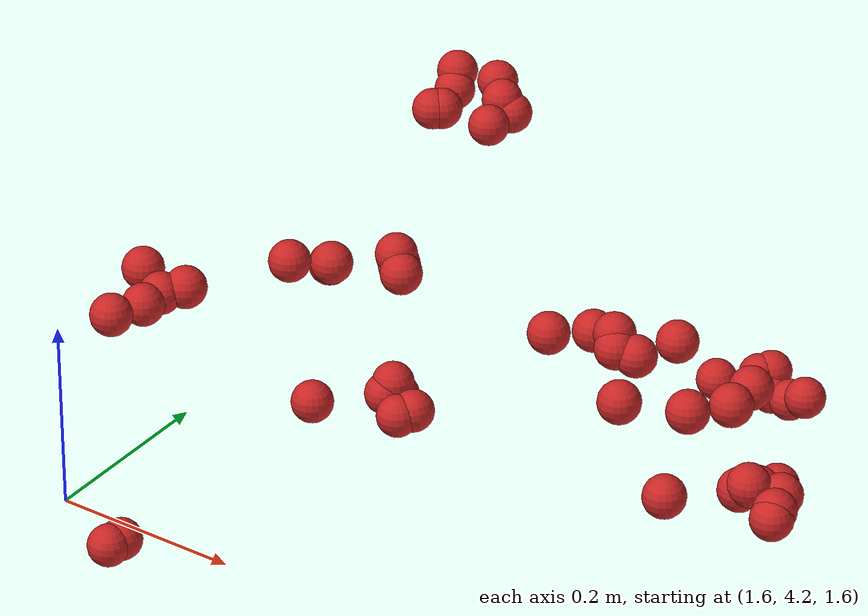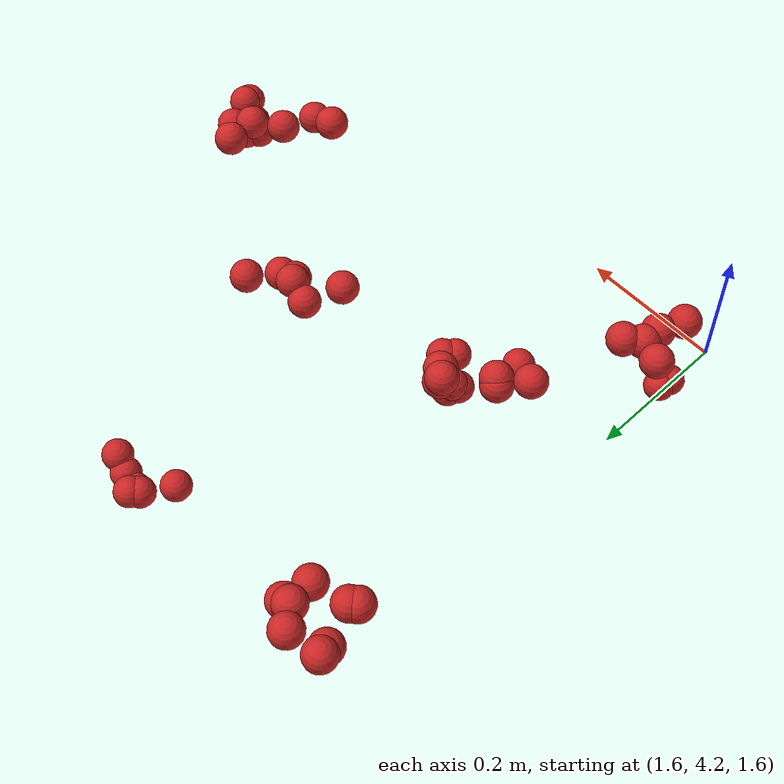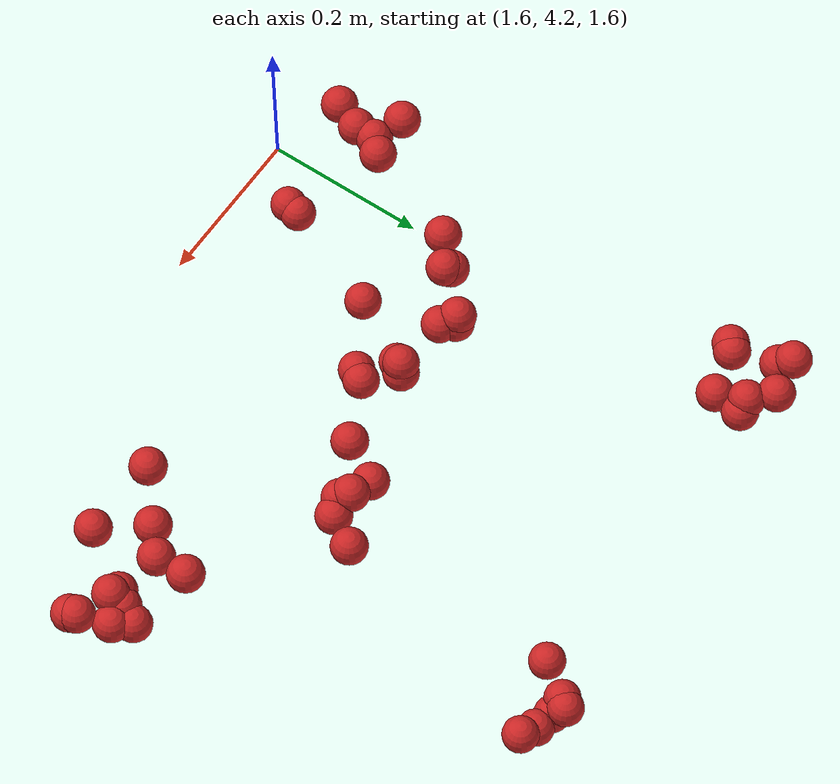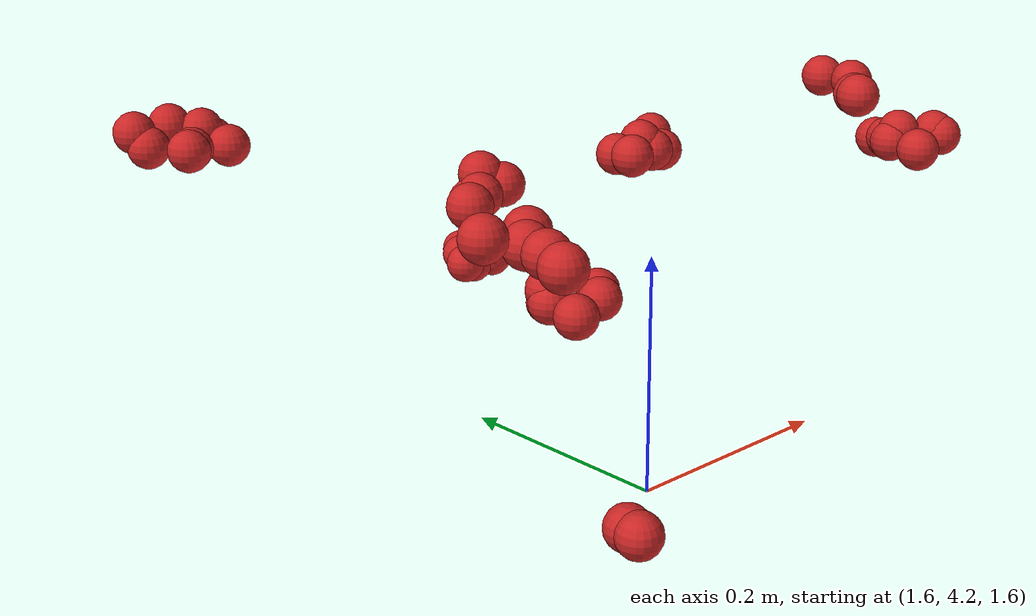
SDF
<sdf version="1.4">
 <model name="fruit_population">
  <static>true</static>
  <link name="fruit_26">
   <pose>2.122906141360459 4.403624283001968 1.7989802915674533 0 0 0</pose>
   <collision name="fruit_collision_26"><geometry><sphere><radius>0.022</radius></sphere></geometry></collision>
   <visual name="visual">
    <geometry><sphere><radius>0.022</radius></sphere></geometry>
    <material><script><name>Gazebo/Red</name></script></material>
   </visual>
   <inertial>
    <mass>0.05</mass>
    <inertia>
     <ixx>9.679999999999999e-06</ixx>
     <ixy>0.0</ixy>
     <ixz>0.0</ixz>
     <iyy>9.679999999999999e-06</iyy>
     <iyz>0.0</iyz>
     <izz>9.679999999999999e-06</izz>
    </inertia>
   </inertial>
   <sensor name="fruit_contact_26" type="contact">
    <plugin name="contact_plugin_26" filename="libcontact_plugin.so"/>
    <contact><collision>fruit_collision_26</collision><topic>fruit_contact_topic_26</topic></contact>
   </sensor>
  </link>
  <link name="fruit_84">
   <pose>1.9432268253336227 4.550039776176055 1.739779423558122 0 0 0</pose>
   <collision name="fruit_collision_84"><geometry><sphere><radius>0.022</radius></sphere></geometry></collision>
   <visual name="visual">
    <geometry><sphere><radius>0.022</radius></sphere></geometry>
    <material><script><name>Gazebo/Red</name></script></material>
   </visual>
   <inertial>
    <mass>0.05</mass>
    <inertia>
     <ixx>9.679999999999999e-06</ixx>
     <ixy>0.0</ixy>
     <ixz>0.0</ixz>
     <iyy>9.679999999999999e-06</iyy>
     <iyz>0.0</iyz>
     <izz>9.679999999999999e-06</izz>
    </inertia>
   </inertial>
   <sensor name="fruit_contact_84" type="contact">
    <plugin name="contact_plugin_84" filename="libcontact_plugin.so"/>
    <contact><collision>fruit_collision_84</collision><topic>fruit_contact_topic_84</topic></contact>
   </sensor>
  </link>
  <link name="fruit_87">
   <pose>1.9642028012419928 4.837444850843282 1.5453665002054073 0 0 0</pose>
   <collision name="fruit_collision_87"><geometry><sphere><radius>0.022</radius></sphere></geometry></collision>
   <visual name="visual">
    <geometry><sphere><radius>0.022</radius></sphere></geometry>
    <material><script><name>Gazebo/Red</name></script></material>
   </visual>
   <inertial>
    <mass>0.05</mass>
    <inertia>
     <ixx>9.679999999999999e-06</ixx>
     <ixy>0.0</ixy>
     <ixz>0.0</ixz>
     <iyy>9.679999999999999e-06</iyy>
     <iyz>0.0</iyz>
     <izz>9.679999999999999e-06</izz>
    </inertia>
   </inertial>
   <sensor name="fruit_contact_87" type="contact">
    <plugin name="contact_plugin_87" filename="libcontact_plugin.so"/>
    <contact><collision>fruit_collision_87</collision><topic>fruit_contact_topic_87</topic></contact>
   </sensor>
  </link>
  <link name="fruit_97">
   <pose>1.6679065337121517 4.488883455412499 1.75960047155998 0 0 0</pose>
   <collision name="fruit_collision_97"><geometry><sphere><radius>0.022</radius></sphere></geometry></collision>
   <visual name="visual">
    <geometry><sphere><radius>0.022</radius></sphere></geometry>
    <material><script><name>Gazebo/Red</name></script></material>
   </visual>
   <inertial>
    <mass>0.05</mass>
    <inertia>
     <ixx>9.679999999999999e-06</ixx>
     <ixy>0.0</ixy>
     <ixz>0.0</ixz>
     <iyy>9.679999999999999e-06</iyy>
     <iyz>0.0</iyz>
     <izz>9.679999999999999e-06</izz>
    </inertia>
   </inertial>
   <sensor name="fruit_contact_97" type="contact">
    <plugin name="contact_plugin_97" filename="libcontact_plugin.so"/>
    <contact><collision>fruit_collision_97</collision><topic>fruit_contact_topic_97</topic></contact>
   </sensor>
  </link>
  <link name="fruit_145">
   <pose>1.7409212848275704 4.425249019817472 1.650755678739573 0 0 0</pose>
   <collision name="fruit_collision_145"><geometry><sphere><radius>0.022</radius></sphere></geometry></collision>
   <visual name="visual">
    <geometry><sphere><radius>0.022</radius></sphere></geometry>
    <material><script><name>Gazebo/Red</name></script></material>
   </visual>
   <inertial>
    <mass>0.05</mass>
    <inertia>
     <ixx>9.679999999999999e-06</ixx>
     <ixy>0.0</ixy>
     <ixz>0.0</ixz>
     <iyy>9.679999999999999e-06</iyy>
     <iyz>0.0</iyz>
     <izz>9.679999999999999e-06</izz>
    </inertia>
   </inertial>
   <sensor name="fruit_contact_145" type="contact">
    <plugin name="contact_plugin_145" filename="libcontact_plugin.so"/>
    <contact><collision>fruit_collision_145</collision><topic>fruit_contact_topic_145</topic></contact>
   </sensor>
  </link>
  <link name="fruit_146">
   <pose>2.1941670821197645 4.375382671144024 1.7331034037670354 0 0 0</pose>
   <collision name="fruit_collision_146"><geometry><sphere><radius>0.022</radius></sphere></geometry></collision>
   <visual name="visual">
    <geometry><sphere><radius>0.022</radius></sphere></geometry>
    <material><script><name>Gazebo/Red</name></script></material>
   </visual>
   <inertial>
    <mass>0.05</mass>
    <inertia>
     <ixx>9.679999999999999e-06</ixx>
     <ixy>0.0</ixy>
     <ixz>0.0</ixz>
     <iyy>9.679999999999999e-06</iyy>
     <iyz>0.0</iyz>
     <izz>9.679999999999999e-06</izz>
    </inertia>
   </inertial>
   <sensor name="fruit_contact_146" type="contact">
    <plugin name="contact_plugin_146" filename="libcontact_plugin.so"/>
    <contact><collision>fruit_collision_146</collision><topic>fruit_contact_topic_146</topic></contact>
   </sensor>
  </link>
  <link name="fruit_177">
   <pose>2.0089975916077836 4.874539299256264 1.5252338698040244 0 0 0</pose>
   <collision name="fruit_collision_177"><geometry><sphere><radius>0.022</radius></sphere></geometry></collision>
   <visual name="visual">
    <geometry><sphere><radius>0.022</radius></sphere></geometry>
    <material><script><name>Gazebo/Red</name></script></material>
   </visual>
   <inertial>
    <mass>0.05</mass>
    <inertia>
     <ixx>9.679999999999999e-06</ixx>
     <ixy>0.0</ixy>
     <ixz>0.0</ixz>
     <iyy>9.679999999999999e-06</iyy>
     <iyz>0.0</iyz>
     <izz>9.679999999999999e-06</izz>
    </inertia>
   </inertial>
   <sensor name="fruit_contact_177" type="contact">
    <plugin name="contact_plugin_177" filename="libcontact_plugin.so"/>
    <contact><collision>fruit_collision_177</collision><topic>fruit_contact_topic_177</topic></contact>
   </sensor>
  </link>
  <link name="fruit_178">
   <pose>1.747388463699243 4.563607365197027 1.758313232135187 0 0 0</pose>
   <collision name="fruit_collision_178"><geometry><sphere><radius>0.022</radius></sphere></geometry></collision>
   <visual name="visual">
    <geometry><sphere><radius>0.022</radius></sphere></geometry>
    <material><script><name>Gazebo/Red</name></script></material>
   </visual>
   <inertial>
    <mass>0.05</mass>
    <inertia>
     <ixx>9.679999999999999e-06</ixx>
     <ixy>0.0</ixy>
     <ixz>0.0</ixz>
     <iyy>9.679999999999999e-06</iyy>
     <iyz>0.0</iyz>
     <izz>9.679999999999999e-06</izz>
    </inertia>
   </inertial>
   <sensor name="fruit_contact_178" type="contact">
    <plugin name="contact_plugin_178" filename="libcontact_plugin.so"/>
    <contact><collision>fruit_collision_178</collision><topic>fruit_contact_topic_178</topic></contact>
   </sensor>
  </link>
  <link name="fruit_179">
   <pose>1.580891974764362 4.911437718304843 1.7611936035224673 0 0 0</pose>
   <collision name="fruit_collision_179"><geometry><sphere><radius>0.022</radius></sphere></geometry></collision>
   <visual name="visual">
    <geometry><sphere><radius>0.022</radius></sphere></geometry>
    <material><script><name>Gazebo/Red</name></script></material>
   </visual>
   <inertial>
    <mass>0.05</mass>
    <inertia>
     <ixx>9.679999999999999e-06</ixx>
     <ixy>0.0</ixy>
     <ixz>0.0</ixz>
     <iyy>9.679999999999999e-06</iyy>
     <iyz>0.0</iyz>
     <izz>9.679999999999999e-06</izz>
    </inertia>
   </inertial>
   <sensor name="fruit_contact_179" type="contact">
    <plugin name="contact_plugin_179" filename="libcontact_plugin.so"/>
    <contact><collision>fruit_collision_179</collision><topic>fruit_contact_topic_179</topic></contact>
   </sensor>
  </link>
  <link name="fruit_190">
   <pose>1.7863328005804597 4.510809103716678 1.6310820038513532 0 0 0</pose>
   <collision name="fruit_collision_190"><geometry><sphere><radius>0.022</radius></sphere></geometry></collision>
   <visual name="visual">
    <geometry><sphere><radius>0.022</radius></sphere></geometry>
    <material><script><name>Gazebo/Red</name></script></material>
   </visual>
   <inertial>
    <mass>0.05</mass>
    <inertia>
     <ixx>9.679999999999999e-06</ixx>
     <ixy>0.0</ixy>
     <ixz>0.0</ixz>
     <iyy>9.679999999999999e-06</iyy>
     <iyz>0.0</iyz>
     <izz>9.679999999999999e-06</izz>
    </inertia>
   </inertial>
   <sensor name="fruit_contact_190" type="contact">
    <plugin name="contact_plugin_190" filename="libcontact_plugin.so"/>
    <contact><collision>fruit_collision_190</collision><topic>fruit_contact_topic_190</topic></contact>
   </sensor>
  </link>
  <link name="fruit_201">
   <pose>2.0039948772911664 4.579099876710897 1.7284798679810267 0 0 0</pose>
   <collision name="fruit_collision_201"><geometry><sphere><radius>0.022</radius></sphere></geometry></collision>
   <visual name="visual">
    <geometry><sphere><radius>0.022</radius></sphere></geometry>
    <material><script><name>Gazebo/Red</name></script></material>
   </visual>
   <inertial>
    <mass>0.05</mass>
    <inertia>
     <ixx>9.679999999999999e-06</ixx>
     <ixy>0.0</ixy>
     <ixz>0.0</ixz>
     <iyy>9.679999999999999e-06</iyy>
     <iyz>0.0</iyz>
     <izz>9.679999999999999e-06</izz>
    </inertia>
   </inertial>
   <sensor name="fruit_contact_201" type="contact">
    <plugin name="contact_plugin_201" filename="libcontact_plugin.so"/>
    <contact><collision>fruit_collision_201</collision><topic>fruit_contact_topic_201</topic></contact>
   </sensor>
  </link>
  <link name="fruit_202">
   <pose>2.237039828515706 4.4417274333289365 1.7210909599281032 0 0 0</pose>
   <collision name="fruit_collision_202"><geometry><sphere><radius>0.022</radius></sphere></geometry></collision>
   <visual name="visual">
    <geometry><sphere><radius>0.022</radius></sphere></geometry>
    <material><script><name>Gazebo/Red</name></script></material>
   </visual>
   <inertial>
    <mass>0.05</mass>
    <inertia>
     <ixx>9.679999999999999e-06</ixx>
     <ixy>0.0</ixy>
     <ixz>0.0</ixz>
     <iyy>9.679999999999999e-06</iyy>
     <iyz>0.0</iyz>
     <izz>9.679999999999999e-06</izz>
    </inertia>
   </inertial>
   <sensor name="fruit_contact_202" type="contact">
    <plugin name="contact_plugin_202" filename="libcontact_plugin.so"/>
    <contact><collision>fruit_collision_202</collision><topic>fruit_contact_topic_202</topic></contact>
   </sensor>
  </link>
  <link name="fruit_208">
   <pose>2.2580498129046953 4.477205055046903 1.7146320880662616 0 0 0</pose>
   <collision name="fruit_collision_208"><geometry><sphere><radius>0.022</radius></sphere></geometry></collision>
   <visual name="visual">
    <geometry><sphere><radius>0.022</radius></sphere></geometry>
    <material><script><name>Gazebo/Red</name></script></material>
   </visual>
   <inertial>
    <mass>0.05</mass>
    <inertia>
     <ixx>9.679999999999999e-06</ixx>
     <ixy>0.0</ixy>
     <ixz>0.0</ixz>
     <iyy>9.679999999999999e-06</iyy>
     <iyz>0.0</iyz>
     <izz>9.679999999999999e-06</izz>
    </inertia>
   </inertial>
   <sensor name="fruit_contact_208" type="contact">
    <plugin name="contact_plugin_208" filename="libcontact_plugin.so"/>
    <contact><collision>fruit_collision_208</collision><topic>fruit_contact_topic_208</topic></contact>
   </sensor>
  </link>
  <link name="fruit_217">
   <pose>2.0573567343596935 4.863595115505771 1.5419962754285272 0 0 0</pose>
   <collision name="fruit_collision_217"><geometry><sphere><radius>0.022</radius></sphere></geometry></collision>
   <visual name="visual">
    <geometry><sphere><radius>0.022</radius></sphere></geometry>
    <material><script><name>Gazebo/Red</name></script></material>
   </visual>
   <inertial>
    <mass>0.05</mass>
    <inertia>
     <ixx>9.679999999999999e-06</ixx>
     <ixy>0.0</ixy>
     <ixz>0.0</ixz>
     <iyy>9.679999999999999e-06</iyy>
     <iyz>0.0</iyz>
     <izz>9.679999999999999e-06</izz>
    </inertia>
   </inertial>
   <sensor name="fruit_contact_217" type="contact">
    <plugin name="contact_plugin_217" filename="libcontact_plugin.so"/>
    <contact><collision>fruit_collision_217</collision><topic>fruit_contact_topic_217</topic></contact>
   </sensor>
  </link>
  <link name="fruit_218">
   <pose>1.9919711301068115 4.877065616668067 1.5411069700291826 0 0 0</pose>
   <collision name="fruit_collision_218"><geometry><sphere><radius>0.022</radius></sphere></geometry></collision>
   <visual name="visual">
    <geometry><sphere><radius>0.022</radius></sphere></geometry>
    <material><script><name>Gazebo/Red</name></script></material>
   </visual>
   <inertial>
    <mass>0.05</mass>
    <inertia>
     <ixx>9.679999999999999e-06</ixx>
     <ixy>0.0</ixy>
     <ixz>0.0</ixz>
     <iyy>9.679999999999999e-06</iyy>
     <iyz>0.0</iyz>
     <izz>9.679999999999999e-06</izz>
    </inertia>
   </inertial>
   <sensor name="fruit_contact_218" type="contact">
    <plugin name="contact_plugin_218" filename="libcontact_plugin.so"/>
    <contact><collision>fruit_collision_218</collision><topic>fruit_contact_topic_218</topic></contact>
   </sensor>
  </link>
  <link name="fruit_259">
   <pose>2.034912610570725 4.869585926316124 1.5283254979944128 0 0 0</pose>
   <collision name="fruit_collision_259"><geometry><sphere><radius>0.022</radius></sphere></geometry></collision>
   <visual name="visual">
    <geometry><sphere><radius>0.022</radius></sphere></geometry>
    <material><script><name>Gazebo/Red</name></script></material>
   </visual>
   <inertial>
    <mass>0.05</mass>
    <inertia>
     <ixx>9.679999999999999e-06</ixx>
     <ixy>0.0</ixy>
     <ixz>0.0</ixz>
     <iyy>9.679999999999999e-06</iyy>
     <iyz>0.0</iyz>
     <izz>9.679999999999999e-06</izz>
    </inertia>
   </inertial>
   <sensor name="fruit_contact_259" type="contact">
    <plugin name="contact_plugin_259" filename="libcontact_plugin.so"/>
    <contact><collision>fruit_collision_259</collision><topic>fruit_contact_topic_259</topic></contact>
   </sensor>
  </link>
  <link name="fruit_278">
   <pose>1.5989522129271279 4.8391779300215 1.7529785555364317 0 0 0</pose>
   <collision name="fruit_collision_278"><geometry><sphere><radius>0.022</radius></sphere></geometry></collision>
   <visual name="visual">
    <geometry><sphere><radius>0.022</radius></sphere></geometry>
    <material><script><name>Gazebo/Red</name></script></material>
   </visual>
   <inertial>
    <mass>0.05</mass>
    <inertia>
     <ixx>9.679999999999999e-06</ixx>
     <ixy>0.0</ixy>
     <ixz>0.0</ixz>
     <iyy>9.679999999999999e-06</iyy>
     <iyz>0.0</iyz>
     <izz>9.679999999999999e-06</izz>
    </inertia>
   </inertial>
   <sensor name="fruit_contact_278" type="contact">
    <plugin name="contact_plugin_278" filename="libcontact_plugin.so"/>
    <contact><collision>fruit_collision_278</collision><topic>fruit_contact_topic_278</topic></contact>
   </sensor>
  </link>
  <link name="fruit_288">
   <pose>1.663578911206776 4.893761831457992 1.7437980547366316 0 0 0</pose>
   <collision name="fruit_collision_288"><geometry><sphere><radius>0.022</radius></sphere></geometry></collision>
   <visual name="visual">
    <geometry><sphere><radius>0.022</radius></sphere></geometry>
    <material><script><name>Gazebo/Red</name></script></material>
   </visual>
   <inertial>
    <mass>0.05</mass>
    <inertia>
     <ixx>9.679999999999999e-06</ixx>
     <ixy>0.0</ixy>
     <ixz>0.0</ixz>
     <iyy>9.679999999999999e-06</iyy>
     <iyz>0.0</iyz>
     <izz>9.679999999999999e-06</izz>
    </inertia>
   </inertial>
   <sensor name="fruit_contact_288" type="contact">
    <plugin name="contact_plugin_288" filename="libcontact_plugin.so"/>
    <contact><collision>fruit_collision_288</collision><topic>fruit_contact_topic_288</topic></contact>
   </sensor>
  </link>
  <link name="fruit_344">
   <pose>1.7782299415832223 4.499908255282195 1.6351574936127513 0 0 0</pose>
   <collision name="fruit_collision_344"><geometry><sphere><radius>0.022</radius></sphere></geometry></collision>
   <visual name="visual">
    <geometry><sphere><radius>0.022</radius></sphere></geometry>
    <material><script><name>Gazebo/Red</name></script></material>
   </visual>
   <inertial>
    <mass>0.05</mass>
    <inertia>
     <ixx>9.679999999999999e-06</ixx>
     <ixy>0.0</ixy>
     <ixz>0.0</ixz>
     <iyy>9.679999999999999e-06</iyy>
     <iyz>0.0</iyz>
     <izz>9.679999999999999e-06</izz>
    </inertia>
   </inertial>
   <sensor name="fruit_contact_344" type="contact">
    <plugin name="contact_plugin_344" filename="libcontact_plugin.so"/>
    <contact><collision>fruit_collision_344</collision><topic>fruit_contact_topic_344</topic></contact>
   </sensor>
  </link>
  <link name="fruit_346">
   <pose>1.6279974952752319 4.919103139105554 1.7599964726360533 0 0 0</pose>
   <collision name="fruit_collision_346"><geometry><sphere><radius>0.022</radius></sphere></geometry></collision>
   <visual name="visual">
    <geometry><sphere><radius>0.022</radius></sphere></geometry>
    <material><script><name>Gazebo/Red</name></script></material>
   </visual>
   <inertial>
    <mass>0.05</mass>
    <inertia>
     <ixx>9.679999999999999e-06</ixx>
     <ixy>0.0</ixy>
     <ixz>0.0</ixz>
     <iyy>9.679999999999999e-06</iyy>
     <iyz>0.0</iyz>
     <izz>9.679999999999999e-06</izz>
    </inertia>
   </inertial>
   <sensor name="fruit_contact_346" type="contact">
    <plugin name="contact_plugin_346" filename="libcontact_plugin.so"/>
    <contact><collision>fruit_collision_346</collision><topic>fruit_contact_topic_346</topic></contact>
   </sensor>
  </link>
  <link name="fruit_372">
   <pose>1.825594516926214 4.481521374306367 1.6410518697542782 0 0 0</pose>
   <collision name="fruit_collision_372"><geometry><sphere><radius>0.022</radius></sphere></geometry></collision>
   <visual name="visual">
    <geometry><sphere><radius>0.022</radius></sphere></geometry>
    <material><script><name>Gazebo/Red</name></script></material>
   </visual>
   <inertial>
    <mass>0.05</mass>
    <inertia>
     <ixx>9.679999999999999e-06</ixx>
     <ixy>0.0</ixy>
     <ixz>0.0</ixz>
     <iyy>9.679999999999999e-06</iyy>
     <iyz>0.0</iyz>
     <izz>9.679999999999999e-06</izz>
    </inertia>
   </inertial>
   <sensor name="fruit_contact_372" type="contact">
    <plugin name="contact_plugin_372" filename="libcontact_plugin.so"/>
    <contact><collision>fruit_collision_372</collision><topic>fruit_contact_topic_372</topic></contact>
   </sensor>
  </link>
  <link name="fruit_389">
   <pose>2.2051668117556646 4.474642444496734 1.7884428027838484 0 0 0</pose>
   <collision name="fruit_collision_389"><geometry><sphere><radius>0.022</radius></sphere></geometry></collision>
   <visual name="visual">
    <geometry><sphere><radius>0.022</radius></sphere></geometry>
    <material><script><name>Gazebo/Red</name></script></material>
   </visual>
   <inertial>
    <mass>0.05</mass>
    <inertia>
     <ixx>9.679999999999999e-06</ixx>
     <ixy>0.0</ixy>
     <ixz>0.0</ixz>
     <iyy>9.679999999999999e-06</iyy>
     <iyz>0.0</iyz>
     <izz>9.679999999999999e-06</izz>
    </inertia>
   </inertial>
   <sensor name="fruit_contact_389" type="contact">
    <plugin name="contact_plugin_389" filename="libcontact_plugin.so"/>
    <contact><collision>fruit_collision_389</collision><topic>fruit_contact_topic_389</topic></contact>
   </sensor>
  </link>
  <link name="fruit_402">
   <pose>2.203405040533161 4.5133800203852 1.7873308844937685 0 0 0</pose>
   <collision name="fruit_collision_402"><geometry><sphere><radius>0.022</radius></sphere></geometry></collision>
   <visual name="visual">
    <geometry><sphere><radius>0.022</radius></sphere></geometry>
    <material><script><name>Gazebo/Red</name></script></material>
   </visual>
   <inertial>
    <mass>0.05</mass>
    <inertia>
     <ixx>9.679999999999999e-06</ixx>
     <ixy>0.0</ixy>
     <ixz>0.0</ixz>
     <iyy>9.679999999999999e-06</iyy>
     <iyz>0.0</iyz>
     <izz>9.679999999999999e-06</izz>
    </inertia>
   </inertial>
   <sensor name="fruit_contact_402" type="contact">
    <plugin name="contact_plugin_402" filename="libcontact_plugin.so"/>
    <contact><collision>fruit_collision_402</collision><topic>fruit_contact_topic_402</topic></contact>
   </sensor>
  </link>
  <link name="fruit_411">
   <pose>2.2484417443966107 4.440084083026912 1.7315927614401958 0 0 0</pose>
   <collision name="fruit_collision_411"><geometry><sphere><radius>0.022</radius></sphere></geometry></collision>
   <visual name="visual">
    <geometry><sphere><radius>0.022</radius></sphere></geometry>
    <material><script><name>Gazebo/Red</name></script></material>
   </visual>
   <inertial>
    <mass>0.05</mass>
    <inertia>
     <ixx>9.679999999999999e-06</ixx>
     <ixy>0.0</ixy>
     <ixz>0.0</ixz>
     <iyy>9.679999999999999e-06</iyy>
     <iyz>0.0</iyz>
     <izz>9.679999999999999e-06</izz>
    </inertia>
   </inertial>
   <sensor name="fruit_contact_411" type="contact">
    <plugin name="contact_plugin_411" filename="libcontact_plugin.so"/>
    <contact><collision>fruit_collision_411</collision><topic>fruit_contact_topic_411</topic></contact>
   </sensor>
  </link>
  <link name="fruit_428">
   <pose>1.9964005402067695 4.588962459949756 1.7382639446037678 0 0 0</pose>
   <collision name="fruit_collision_428"><geometry><sphere><radius>0.022</radius></sphere></geometry></collision>
   <visual name="visual">
    <geometry><sphere><radius>0.022</radius></sphere></geometry>
    <material><script><name>Gazebo/Red</name></script></material>
   </visual>
   <inertial>
    <mass>0.05</mass>
    <inertia>
     <ixx>9.679999999999999e-06</ixx>
     <ixy>0.0</ixy>
     <ixz>0.0</ixz>
     <iyy>9.679999999999999e-06</iyy>
     <iyz>0.0</iyz>
     <izz>9.679999999999999e-06</izz>
    </inertia>
   </inertial>
   <sensor name="fruit_contact_428" type="contact">
    <plugin name="contact_plugin_428" filename="libcontact_plugin.so"/>
    <contact><collision>fruit_collision_428</collision><topic>fruit_contact_topic_428</topic></contact>
   </sensor>
  </link>
  <link name="fruit_459">
   <pose>2.001114839554528 4.887444638149814 1.5430146793199688 0 0 0</pose>
   <collision name="fruit_collision_459"><geometry><sphere><radius>0.022</radius></sphere></geometry></collision>
   <visual name="visual">
    <geometry><sphere><radius>0.022</radius></sphere></geometry>
    <material><script><name>Gazebo/Red</name></script></material>
   </visual>
   <inertial>
    <mass>0.05</mass>
    <inertia>
     <ixx>9.679999999999999e-06</ixx>
     <ixy>0.0</ixy>
     <ixz>0.0</ixz>
     <iyy>9.679999999999999e-06</iyy>
     <iyz>0.0</iyz>
     <izz>9.679999999999999e-06</izz>
    </inertia>
   </inertial>
   <sensor name="fruit_contact_459" type="contact">
    <plugin name="contact_plugin_459" filename="libcontact_plugin.so"/>
    <contact><collision>fruit_collision_459</collision><topic>fruit_contact_topic_459</topic></contact>
   </sensor>
  </link>
  <link name="fruit_466">
   <pose>2.173714659964653 4.446639844679779 1.784142386352124 0 0 0</pose>
   <collision name="fruit_collision_466"><geometry><sphere><radius>0.022</radius></sphere></geometry></collision>
   <visual name="visual">
    <geometry><sphere><radius>0.022</radius></sphere></geometry>
    <material><script><name>Gazebo/Red</name></script></material>
   </visual>
   <inertial>
    <mass>0.05</mass>
    <inertia>
     <ixx>9.679999999999999e-06</ixx>
     <ixy>0.0</ixy>
     <ixz>0.0</ixz>
     <iyy>9.679999999999999e-06</iyy>
     <iyz>0.0</iyz>
     <izz>9.679999999999999e-06</izz>
    </inertia>
   </inertial>
   <sensor name="fruit_contact_466" type="contact">
    <plugin name="contact_plugin_466" filename="libcontact_plugin.so"/>
    <contact><collision>fruit_collision_466</collision><topic>fruit_contact_topic_466</topic></contact>
   </sensor>
  </link>
  <link name="fruit_472">
   <pose>1.6273131287147509 4.369249531936634 1.7739067260691397 0 0 0</pose>
   <collision name="fruit_collision_472"><geometry><sphere><radius>0.022</radius></sphere></geometry></collision>
   <visual name="visual">
    <geometry><sphere><radius>0.022</radius></sphere></geometry>
    <material><script><name>Gazebo/Red</name></script></material>
   </visual>
   <inertial>
    <mass>0.05</mass>
    <inertia>
     <ixx>9.679999999999999e-06</ixx>
     <ixy>0.0</ixy>
     <ixz>0.0</ixz>
     <iyy>9.679999999999999e-06</iyy>
     <iyz>0.0</iyz>
     <izz>9.679999999999999e-06</izz>
    </inertia>
   </inertial>
   <sensor name="fruit_contact_472" type="contact">
    <plugin name="contact_plugin_472" filename="libcontact_plugin.so"/>
    <contact><collision>fruit_collision_472</collision><topic>fruit_contact_topic_472</topic></contact>
   </sensor>
  </link>
  <link name="fruit_473">
   <pose>1.6064706671966522 4.845601289070884 1.7528488727902305 0 0 0</pose>
   <collision name="fruit_collision_473"><geometry><sphere><radius>0.022</radius></sphere></geometry></collision>
   <visual name="visual">
    <geometry><sphere><radius>0.022</radius></sphere></geometry>
    <material><script><name>Gazebo/Red</name></script></material>
   </visual>
   <inertial>
    <mass>0.05</mass>
    <inertia>
     <ixx>9.679999999999999e-06</ixx>
     <ixy>0.0</ixy>
     <ixz>0.0</ixz>
     <iyy>9.679999999999999e-06</iyy>
     <iyz>0.0</iyz>
     <izz>9.679999999999999e-06</izz>
    </inertia>
   </inertial>
   <sensor name="fruit_contact_473" type="contact">
    <plugin name="contact_plugin_473" filename="libcontact_plugin.so"/>
    <contact><collision>fruit_collision_473</collision><topic>fruit_contact_topic_473</topic></contact>
   </sensor>
  </link>
  <link name="fruit_514">
   <pose>1.6077338311430576 4.325019519342266 1.7687749767778547 0 0 0</pose>
   <collision name="fruit_collision_514"><geometry><sphere><radius>0.022</radius></sphere></geometry></collision>
   <visual name="visual">
    <geometry><sphere><radius>0.022</radius></sphere></geometry>
    <material><script><name>Gazebo/Red</name></script></material>
   </visual>
   <inertial>
    <mass>0.05</mass>
    <inertia>
     <ixx>9.679999999999999e-06</ixx>
     <ixy>0.0</ixy>
     <ixz>0.0</ixz>
     <iyy>9.679999999999999e-06</iyy>
     <iyz>0.0</iyz>
     <izz>9.679999999999999e-06</izz>
    </inertia>
   </inertial>
   <sensor name="fruit_contact_514" type="contact">
    <plugin name="contact_plugin_514" filename="libcontact_plugin.so"/>
    <contact><collision>fruit_collision_514</collision><topic>fruit_contact_topic_514</topic></contact>
   </sensor>
  </link>
  <link name="fruit_517">
   <pose>2.049085292980454 4.62338192817068 1.7297826399809408 0 0 0</pose>
   <collision name="fruit_collision_517"><geometry><sphere><radius>0.022</radius></sphere></geometry></collision>
   <visual name="visual">
    <geometry><sphere><radius>0.022</radius></sphere></geometry>
    <material><script><name>Gazebo/Red</name></script></material>
   </visual>
   <inertial>
    <mass>0.05</mass>
    <inertia>
     <ixx>9.679999999999999e-06</ixx>
     <ixy>0.0</ixy>
     <ixz>0.0</ixz>
     <iyy>9.679999999999999e-06</iyy>
     <iyz>0.0</iyz>
     <izz>9.679999999999999e-06</izz>
    </inertia>
   </inertial>
   <sensor name="fruit_contact_517" type="contact">
    <plugin name="contact_plugin_517" filename="libcontact_plugin.so"/>
    <contact><collision>fruit_collision_517</collision><topic>fruit_contact_topic_517</topic></contact>
   </sensor>
  </link>
  <link name="fruit_541">
   <pose>1.7821043976347504 4.5078674870222395 1.645454864566984 0 0 0</pose>
   <collision name="fruit_collision_541"><geometry><sphere><radius>0.022</radius></sphere></geometry></collision>
   <visual name="visual">
    <geometry><sphere><radius>0.022</radius></sphere></geometry>
    <material><script><name>Gazebo/Red</name></script></material>
   </visual>
   <inertial>
    <mass>0.05</mass>
    <inertia>
     <ixx>9.679999999999999e-06</ixx>
     <ixy>0.0</ixy>
     <ixz>0.0</ixz>
     <iyy>9.679999999999999e-06</iyy>
     <iyz>0.0</iyz>
     <izz>9.679999999999999e-06</izz>
    </inertia>
   </inertial>
   <sensor name="fruit_contact_541" type="contact">
    <plugin name="contact_plugin_541" filename="libcontact_plugin.so"/>
    <contact><collision>fruit_collision_541</collision><topic>fruit_contact_topic_541</topic></contact>
   </sensor>
  </link>
  <link name="fruit_549">
   <pose>2.024738201581921 4.5850385803903215 1.7235517679183547 0 0 0</pose>
   <collision name="fruit_collision_549"><geometry><sphere><radius>0.022</radius></sphere></geometry></collision>
   <visual name="visual">
    <geometry><sphere><radius>0.022</radius></sphere></geometry>
    <material><script><name>Gazebo/Red</name></script></material>
   </visual>
   <inertial>
    <mass>0.05</mass>
    <inertia>
     <ixx>9.679999999999999e-06</ixx>
     <ixy>0.0</ixy>
     <ixz>0.0</ixz>
     <iyy>9.679999999999999e-06</iyy>
     <iyz>0.0</iyz>
     <izz>9.679999999999999e-06</izz>
    </inertia>
   </inertial>
   <sensor name="fruit_contact_549" type="contact">
    <plugin name="contact_plugin_549" filename="libcontact_plugin.so"/>
    <contact><collision>fruit_collision_549</collision><topic>fruit_contact_topic_549</topic></contact>
   </sensor>
  </link>
  <link name="fruit_550">
   <pose>1.6296770332227977 4.2493406928177055 1.5383220158185216 0 0 0</pose>
   <collision name="fruit_collision_550"><geometry><sphere><radius>0.022</radius></sphere></geometry></collision>
   <visual name="visual">
    <geometry><sphere><radius>0.022</radius></sphere></geometry>
    <material><script><name>Gazebo/Red</name></script></material>
   </visual>
   <inertial>
    <mass>0.05</mass>
    <inertia>
     <ixx>9.679999999999999e-06</ixx>
     <ixy>0.0</ixy>
     <ixz>0.0</ixz>
     <iyy>9.679999999999999e-06</iyy>
     <iyz>0.0</iyz>
     <izz>9.679999999999999e-06</izz>
    </inertia>
   </inertial>
   <sensor name="fruit_contact_550" type="contact">
    <plugin name="contact_plugin_550" filename="libcontact_plugin.so"/>
    <contact><collision>fruit_collision_550</collision><topic>fruit_contact_topic_550</topic></contact>
   </sensor>
  </link>
  <link name="fruit_579">
   <pose>1.6094191429138724 4.351343434639087 1.7697996346747893 0 0 0</pose>
   <collision name="fruit_collision_579"><geometry><sphere><radius>0.022</radius></sphere></geometry></collision>
   <visual name="visual">
    <geometry><sphere><radius>0.022</radius></sphere></geometry>
    <material><script><name>Gazebo/Red</name></script></material>
   </visual>
   <inertial>
    <mass>0.05</mass>
    <inertia>
     <ixx>9.679999999999999e-06</ixx>
     <ixy>0.0</ixy>
     <ixz>0.0</ixz>
     <iyy>9.679999999999999e-06</iyy>
     <iyz>0.0</iyz>
     <izz>9.679999999999999e-06</izz>
    </inertia>
   </inertial>
   <sensor name="fruit_contact_579" type="contact">
    <plugin name="contact_plugin_579" filename="libcontact_plugin.so"/>
    <contact><collision>fruit_collision_579</collision><topic>fruit_contact_topic_579</topic></contact>
   </sensor>
  </link>
  <link name="fruit_602">
   <pose>1.6510564592440056 4.893994421493594 1.7559877655938017 0 0 0</pose>
   <collision name="fruit_collision_602"><geometry><sphere><radius>0.022</radius></sphere></geometry></collision>
   <visual name="visual">
    <geometry><sphere><radius>0.022</radius></sphere></geometry>
    <material><script><name>Gazebo/Red</name></script></material>
   </visual>
   <inertial>
    <mass>0.05</mass>
    <inertia>
     <ixx>9.679999999999999e-06</ixx>
     <ixy>0.0</ixy>
     <ixz>0.0</ixz>
     <iyy>9.679999999999999e-06</iyy>
     <iyz>0.0</iyz>
     <izz>9.679999999999999e-06</izz>
    </inertia>
   </inertial>
   <sensor name="fruit_contact_602" type="contact">
    <plugin name="contact_plugin_602" filename="libcontact_plugin.so"/>
    <contact><collision>fruit_collision_602</collision><topic>fruit_contact_topic_602</topic></contact>
   </sensor>
  </link>
  <link name="fruit_608">
   <pose>1.6963335344531587 4.518988883115587 1.7510370852006836 0 0 0</pose>
   <collision name="fruit_collision_608"><geometry><sphere><radius>0.022</radius></sphere></geometry></collision>
   <visual name="visual">
    <geometry><sphere><radius>0.022</radius></sphere></geometry>
    <material><script><name>Gazebo/Red</name></script></material>
   </visual>
   <inertial>
    <mass>0.05</mass>
    <inertia>
     <ixx>9.679999999999999e-06</ixx>
     <ixy>0.0</ixy>
     <ixz>0.0</ixz>
     <iyy>9.679999999999999e-06</iyy>
     <iyz>0.0</iyz>
     <izz>9.679999999999999e-06</izz>
    </inertia>
   </inertial>
   <sensor name="fruit_contact_608" type="contact">
    <plugin name="contact_plugin_608" filename="libcontact_plugin.so"/>
    <contact><collision>fruit_collision_608</collision><topic>fruit_contact_topic_608</topic></contact>
   </sensor>
  </link>
  <link name="fruit_609">
   <pose>1.7510113417336548 4.563460930997661 1.7467959680735043 0 0 0</pose>
   <collision name="fruit_collision_609"><geometry><sphere><radius>0.022</radius></sphere></geometry></collision>
   <visual name="visual">
    <geometry><sphere><radius>0.022</radius></sphere></geometry>
    <material><script><name>Gazebo/Red</name></script></material>
   </visual>
   <inertial>
    <mass>0.05</mass>
    <inertia>
     <ixx>9.679999999999999e-06</ixx>
     <ixy>0.0</ixy>
     <ixz>0.0</ixz>
     <iyy>9.679999999999999e-06</iyy>
     <iyz>0.0</iyz>
     <izz>9.679999999999999e-06</izz>
    </inertia>
   </inertial>
   <sensor name="fruit_contact_609" type="contact">
    <plugin name="contact_plugin_609" filename="libcontact_plugin.so"/>
    <contact><collision>fruit_collision_609</collision><topic>fruit_contact_topic_609</topic></contact>
   </sensor>
  </link>
  <link name="fruit_612">
   <pose>1.587505530378745 4.896654549076057 1.7470964898027854 0 0 0</pose>
   <collision name="fruit_collision_612"><geometry><sphere><radius>0.022</radius></sphere></geometry></collision>
   <visual name="visual">
    <geometry><sphere><radius>0.022</radius></sphere></geometry>
    <material><script><name>Gazebo/Red</name></script></material>
   </visual>
   <inertial>
    <mass>0.05</mass>
    <inertia>
     <ixx>9.679999999999999e-06</ixx>
     <ixy>0.0</ixy>
     <ixz>0.0</ixz>
     <iyy>9.679999999999999e-06</iyy>
     <iyz>0.0</iyz>
     <izz>9.679999999999999e-06</izz>
    </inertia>
   </inertial>
   <sensor name="fruit_contact_612" type="contact">
    <plugin name="contact_plugin_612" filename="libcontact_plugin.so"/>
    <contact><collision>fruit_collision_612</collision><topic>fruit_contact_topic_612</topic></contact>
   </sensor>
  </link>
  <link name="fruit_627">
   <pose>1.7631602281970442 4.549663234364399 1.7473981398763805 0 0 0</pose>
   <collision name="fruit_collision_627"><geometry><sphere><radius>0.022</radius></sphere></geometry></collision>
   <visual name="visual">
    <geometry><sphere><radius>0.022</radius></sphere></geometry>
    <material><script><name>Gazebo/Red</name></script></material>
   </visual>
   <inertial>
    <mass>0.05</mass>
    <inertia>
     <ixx>9.679999999999999e-06</ixx>
     <ixy>0.0</ixy>
     <ixz>0.0</ixz>
     <iyy>9.679999999999999e-06</iyy>
     <iyz>0.0</iyz>
     <izz>9.679999999999999e-06</izz>
    </inertia>
   </inertial>
   <sensor name="fruit_contact_627" type="contact">
    <plugin name="contact_plugin_627" filename="libcontact_plugin.so"/>
    <contact><collision>fruit_collision_627</collision><topic>fruit_contact_topic_627</topic></contact>
   </sensor>
  </link>
  <link name="fruit_632">
   <pose>1.6262421614200009 4.2326112279226225 1.5384877043502605 0 0 0</pose>
   <collision name="fruit_collision_632"><geometry><sphere><radius>0.022</radius></sphere></geometry></collision>
   <visual name="visual">
    <geometry><sphere><radius>0.022</radius></sphere></geometry>
    <material><script><name>Gazebo/Red</name></script></material>
   </visual>
   <inertial>
    <mass>0.05</mass>
    <inertia>
     <ixx>9.679999999999999e-06</ixx>
     <ixy>0.0</ixy>
     <ixz>0.0</ixz>
     <iyy>9.679999999999999e-06</iyy>
     <iyz>0.0</iyz>
     <izz>9.679999999999999e-06</izz>
    </inertia>
   </inertial>
   <sensor name="fruit_contact_632" type="contact">
    <plugin name="contact_plugin_632" filename="libcontact_plugin.so"/>
    <contact><collision>fruit_collision_632</collision><topic>fruit_contact_topic_632</topic></contact>
   </sensor>
  </link>
  <link name="fruit_664">
   <pose>2.2909469019698028 4.414180562481794 1.7231038652919468 0 0 0</pose>
   <collision name="fruit_collision_664"><geometry><sphere><radius>0.022</radius></sphere></geometry></collision>
   <visual name="visual">
    <geometry><sphere><radius>0.022</radius></sphere></geometry>
    <material><script><name>Gazebo/Red</name></script></material>
   </visual>
   <inertial>
    <mass>0.05</mass>
    <inertia>
     <ixx>9.679999999999999e-06</ixx>
     <ixy>0.0</ixy>
     <ixz>0.0</ixz>
     <iyy>9.679999999999999e-06</iyy>
     <iyz>0.0</iyz>
     <izz>9.679999999999999e-06</izz>
    </inertia>
   </inertial>
   <sensor name="fruit_contact_664" type="contact">
    <plugin name="contact_plugin_664" filename="libcontact_plugin.so"/>
    <contact><collision>fruit_collision_664</collision><topic>fruit_contact_topic_664</topic></contact>
   </sensor>
  </link>
  <link name="fruit_667">
   <pose>1.6590976524596388 4.857010681365526 1.7439962985596298 0 0 0</pose>
   <collision name="fruit_collision_667"><geometry><sphere><radius>0.022</radius></sphere></geometry></collision>
   <visual name="visual">
    <geometry><sphere><radius>0.022</radius></sphere></geometry>
    <material><script><name>Gazebo/Red</name></script></material>
   </visual>
   <inertial>
    <mass>0.05</mass>
    <inertia>
     <ixx>9.679999999999999e-06</ixx>
     <ixy>0.0</ixy>
     <ixz>0.0</ixz>
     <iyy>9.679999999999999e-06</iyy>
     <iyz>0.0</iyz>
     <izz>9.679999999999999e-06</izz>
    </inertia>
   </inertial>
   <sensor name="fruit_contact_667" type="contact">
    <plugin name="contact_plugin_667" filename="libcontact_plugin.so"/>
    <contact><collision>fruit_collision_667</collision><topic>fruit_contact_topic_667</topic></contact>
   </sensor>
  </link>
  <link name="fruit_707">
   <pose>2.2489010608465563 4.455945628165501 1.720161619799438 0 0 0</pose>
   <collision name="fruit_collision_707"><geometry><sphere><radius>0.022</radius></sphere></geometry></collision>
   <visual name="visual">
    <geometry><sphere><radius>0.022</radius></sphere></geometry>
    <material><script><name>Gazebo/Red</name></script></material>
   </visual>
   <inertial>
    <mass>0.05</mass>
    <inertia>
     <ixx>9.679999999999999e-06</ixx>
     <ixy>0.0</ixy>
     <ixz>0.0</ixz>
     <iyy>9.679999999999999e-06</iyy>
     <iyz>0.0</iyz>
     <izz>9.679999999999999e-06</izz>
    </inertia>
   </inertial>
   <sensor name="fruit_contact_707" type="contact">
    <plugin name="contact_plugin_707" filename="libcontact_plugin.so"/>
    <contact><collision>fruit_collision_707</collision><topic>fruit_contact_topic_707</topic></contact>
   </sensor>
  </link>
  <link name="fruit_774">
   <pose>1.9669940525586211 4.595270885813803 1.727871267017176 0 0 0</pose>
   <collision name="fruit_collision_774"><geometry><sphere><radius>0.022</radius></sphere></geometry></collision>
   <visual name="visual">
    <geometry><sphere><radius>0.022</radius></sphere></geometry>
    <material><script><name>Gazebo/Red</name></script></material>
   </visual>
   <inertial>
    <mass>0.05</mass>
    <inertia>
     <ixx>9.679999999999999e-06</ixx>
     <ixy>0.0</ixy>
     <ixz>0.0</ixz>
     <iyy>9.679999999999999e-06</iyy>
     <iyz>0.0</iyz>
     <izz>9.679999999999999e-06</izz>
    </inertia>
   </inertial>
   <sensor name="fruit_contact_774" type="contact">
    <plugin name="contact_plugin_774" filename="libcontact_plugin.so"/>
    <contact><collision>fruit_collision_774</collision><topic>fruit_contact_topic_774</topic></contact>
   </sensor>
  </link>
  <link name="fruit_785">
   <pose>1.575368477871821 4.367376524470758 1.779449118446989 0 0 0</pose>
   <collision name="fruit_collision_785"><geometry><sphere><radius>0.022</radius></sphere></geometry></collision>
   <visual name="visual">
    <geometry><sphere><radius>0.022</radius></sphere></geometry>
    <material><script><name>Gazebo/Red</name></script></material>
   </visual>
   <inertial>
    <mass>0.05</mass>
    <inertia>
     <ixx>9.679999999999999e-06</ixx>
     <ixy>0.0</ixy>
     <ixz>0.0</ixz>
     <iyy>9.679999999999999e-06</iyy>
     <iyz>0.0</iyz>
     <izz>9.679999999999999e-06</izz>
    </inertia>
   </inertial>
   <sensor name="fruit_contact_785" type="contact">
    <plugin name="contact_plugin_785" filename="libcontact_plugin.so"/>
    <contact><collision>fruit_collision_785</collision><topic>fruit_contact_topic_785</topic></contact>
   </sensor>
  </link>
  <link name="fruit_797">
   <pose>2.2737869929300327 4.458669507948068 1.7195067843509215 0 0 0</pose>
   <collision name="fruit_collision_797"><geometry><sphere><radius>0.022</radius></sphere></geometry></collision>
   <visual name="visual">
    <geometry><sphere><radius>0.022</radius></sphere></geometry>
    <material><script><name>Gazebo/Red</name></script></material>
   </visual>
   <inertial>
    <mass>0.05</mass>
    <inertia>
     <ixx>9.679999999999999e-06</ixx>
     <ixy>0.0</ixy>
     <ixz>0.0</ixz>
     <iyy>9.679999999999999e-06</iyy>
     <iyz>0.0</iyz>
     <izz>9.679999999999999e-06</izz>
    </inertia>
   </inertial>
   <sensor name="fruit_contact_797" type="contact">
    <plugin name="contact_plugin_797" filename="libcontact_plugin.so"/>
    <contact><collision>fruit_collision_797</collision><topic>fruit_contact_topic_797</topic></contact>
   </sensor>
  </link>
  <link name="fruit_799">
   <pose>2.2891203199419925 4.422371544711982 1.727113982066235 0 0 0</pose>
   <collision name="fruit_collision_799"><geometry><sphere><radius>0.022</radius></sphere></geometry></collision>
   <visual name="visual">
    <geometry><sphere><radius>0.022</radius></sphere></geometry>
    <material><script><name>Gazebo/Red</name></script></material>
   </visual>
   <inertial>
    <mass>0.05</mass>
    <inertia>
     <ixx>9.679999999999999e-06</ixx>
     <ixy>0.0</ixy>
     <ixz>0.0</ixz>
     <iyy>9.679999999999999e-06</iyy>
     <iyz>0.0</iyz>
     <izz>9.679999999999999e-06</izz>
    </inertia>
   </inertial>
   <sensor name="fruit_contact_799" type="contact">
    <plugin name="contact_plugin_799" filename="libcontact_plugin.so"/>
    <contact><collision>fruit_collision_799</collision><topic>fruit_contact_topic_799</topic></contact>
   </sensor>
  </link>
  <link name="fruit_800">
   <pose>1.7020253022108085 4.514248610301652 1.756699118933019 0 0 0</pose>
   <collision name="fruit_collision_800"><geometry><sphere><radius>0.022</radius></sphere></geometry></collision>
   <visual name="visual">
    <geometry><sphere><radius>0.022</radius></sphere></geometry>
    <material><script><name>Gazebo/Red</name></script></material>
   </visual>
   <inertial>
    <mass>0.05</mass>
    <inertia>
     <ixx>9.679999999999999e-06</ixx>
     <ixy>0.0</ixy>
     <ixz>0.0</ixz>
     <iyy>9.679999999999999e-06</iyy>
     <iyz>0.0</iyz>
     <izz>9.679999999999999e-06</izz>
    </inertia>
   </inertial>
   <sensor name="fruit_contact_800" type="contact">
    <plugin name="contact_plugin_800" filename="libcontact_plugin.so"/>
    <contact><collision>fruit_collision_800</collision><topic>fruit_contact_topic_800</topic></contact>
   </sensor>
  </link>
  <link name="fruit_818">
   <pose>1.8155757329293924 4.468245948611135 1.6382262004233124 0 0 0</pose>
   <collision name="fruit_collision_818"><geometry><sphere><radius>0.022</radius></sphere></geometry></collision>
   <visual name="visual">
    <geometry><sphere><radius>0.022</radius></sphere></geometry>
    <material><script><name>Gazebo/Red</name></script></material>
   </visual>
   <inertial>
    <mass>0.05</mass>
    <inertia>
     <ixx>9.679999999999999e-06</ixx>
     <ixy>0.0</ixy>
     <ixz>0.0</ixz>
     <iyy>9.679999999999999e-06</iyy>
     <iyz>0.0</iyz>
     <izz>9.679999999999999e-06</izz>
    </inertia>
   </inertial>
   <sensor name="fruit_contact_818" type="contact">
    <plugin name="contact_plugin_818" filename="libcontact_plugin.so"/>
    <contact><collision>fruit_collision_818</collision><topic>fruit_contact_topic_818</topic></contact>
   </sensor>
  </link>
  <link name="fruit_819">
   <pose>1.593813506486991 4.291021328341168 1.7689419650136495 0 0 0</pose>
   <collision name="fruit_collision_819"><geometry><sphere><radius>0.022</radius></sphere></geometry></collision>
   <visual name="visual">
    <geometry><sphere><radius>0.022</radius></sphere></geometry>
    <material><script><name>Gazebo/Red</name></script></material>
   </visual>
   <inertial>
    <mass>0.05</mass>
    <inertia>
     <ixx>9.679999999999999e-06</ixx>
     <ixy>0.0</ixy>
     <ixz>0.0</ixz>
     <iyy>9.679999999999999e-06</iyy>
     <iyz>0.0</iyz>
     <izz>9.679999999999999e-06</izz>
    </inertia>
   </inertial>
   <sensor name="fruit_contact_819" type="contact">
    <plugin name="contact_plugin_819" filename="libcontact_plugin.so"/>
    <contact><collision>fruit_collision_819</collision><topic>fruit_contact_topic_819</topic></contact>
   </sensor>
  </link>
 </model>
</sdf>
